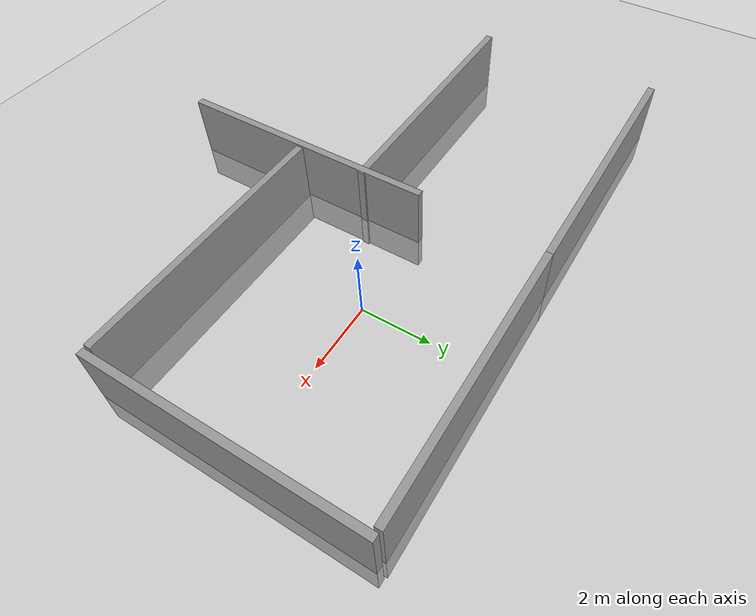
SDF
<!--custom landscape for obstacle avoidance testign-->
<?xml version="1.0" ?>
<sdf version="1.4">
  <world name="default">
    <include>
      <uri>model://ground_plane</uri>
    </include>
    <include>
      <uri>model://sun</uri>
    </include>

    <include> second wall
      <uri>model://grey_wall</uri>
      <name>grey_wall_front2</name>
      <pose>5.0 0.0 -1.0 0 0 1.57</pose>
    </include>

    <include>
      <uri>model://grey_wall</uri>
      <name>grey_wall_left</name>
      <pose>1.1 3.7 -1.0 0 0.0 0.0</pose>
    </include>
    <include>
      <uri>model://grey_wall</uri>
      <name>grey_wall_left</name>
      <pose>-6.4 3.7 -1.0 0 0.0 0.0</pose>
    </include>

    <include>
      <uri>model://grey_wall</uri>
      <name>grey_wall_right</name>
      <pose>-2.8 -3.7 -1.0 0 0.0 1.57</pose>
    </include>
    <include>
      <uri>model://grey_wall</uri>
      <name>grey_wall_right</name>
      <pose>1.1 -3.7 -1.0 0 0.0 0.0</pose>
    </include>
    <include>
      <uri>model://grey_wall</uri>
      <name>grey_wall_right</name>
      <pose>-6.4 -1.7 -1.0 0 0.0 0.0</pose>
    </include>

  </world>
</sdf>

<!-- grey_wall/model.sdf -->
<sdf version="1.5">
  <model name="grey_wall">
    <static>true</static>
    <link name="link">
      <pose>0 0 1.4 0 0 0</pose>
      <collision name="collision">
        <geometry>
          <box>
            <size>7.5 0.2 2.8</size>
          </box>
        </geometry>
      </collision>
      <visual name="visual">
        <cast_shadows>false</cast_shadows>
        <geometry>
          <box>
            <size>7.5 0.2 2.8</size>
          </box>
        </geometry>
        <material>
          <script>
            <uri>model://../model_source/models/grey_wall/materials/scripts</uri>
            <uri>model://../model_source/models/grey_wall/materials/textures</uri>
            <name>vrc/grey_wall</name>
          </script>
        </material>
      </visual>
    </link>
  </model>
</sdf>
